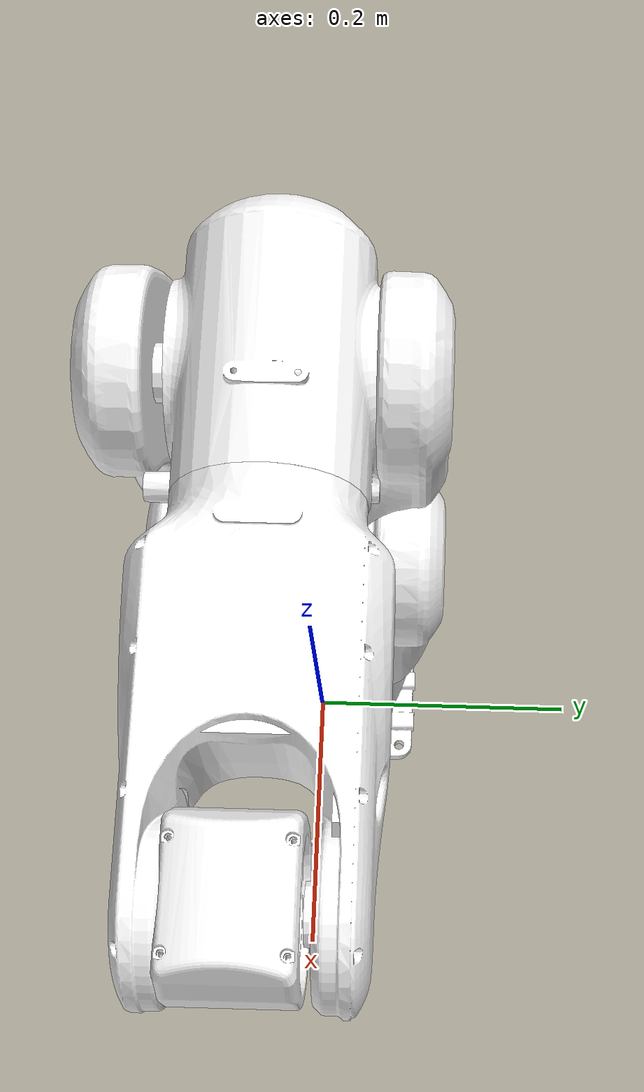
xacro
<?xml version="1.0" encoding="utf-8"?>
<robot name="probot_g602" xmlns:xacro="http://ros.org/wiki/xacro">
  <xacro:property name="M_PI" value="3.1415926536"/>

  <link
    name="base_link">
    <inertial>
      <origin
        xyz="-0.044061 -5.588E-06 0.085803"
        rpy="0 0 0" />
      <mass
        value="3.5695" />
      <inertia
        ixx="0.01281"
        ixy="4.8304E-06"
        ixz="-0.00014028"
        iyy="0.016134"
        iyz="-1.7193E-05"
        izz="0.013611" />
    </inertial>
    <visual>
      <origin
        xyz="0 0 0"
        rpy="0 0 0" />
      <geometry>
        <mesh
          filename="package://probot_description/meshes/PROBOT_G602/base_link.STL" />
      </geometry>
      <material
        name="">
        <color
          rgba="1 1 1 1" />
      </material>
    </visual>
    <collision>
      <origin
        xyz="0 0 0"
        rpy="0 0 0" />
      <geometry>
        <mesh
          filename="package://probot_description/meshes/PROBOT_G602/base_link.STL" />
      </geometry>
    </collision>
  </link>
  <link
    name="link_1">
    <inertial>
      <origin
        xyz="-0.01924 0.00087733 0.11825"
        rpy="0 0 0" />
      <mass
        value="3.3716" />
      <inertia
        ixx="0.022887"
        ixy="-5.6966E-05"
        ixz="-0.0017128"
        iyy="0.016084"
        iyz="-0.0002489"
        izz="0.015166" />
    </inertial>
    <visual>
      <origin
        xyz="0 0 0"
        rpy="0 0 0" />
      <geometry>
        <mesh
          filename="package://probot_description/meshes/PROBOT_G602/link_1.STL" />
      </geometry>
      <material
        name="">
        <color
          rgba="1 1 1 1" />
      </material>
    </visual>
    <collision>
      <origin
        xyz="0 0 0"
        rpy="0 0 0" />
      <geometry>
        <mesh
          filename="package://probot_description/meshes/PROBOT_G602/link_1.STL" />
      </geometry>
    </collision>
  </link>
  <joint
    name="joint_1"
    type="revolute">
    <origin
      xyz="0 0 0.13664"
      rpy="0 0 0" />
    <parent
      link="base_link" />
    <child
      link="link_1" />
    <axis
      xyz="0 0 1" />
    <limit
      lower="-2.617"
      upper="2.617"
      effort="100"
      velocity="3" />
  </joint>
  <link
    name="link_2">
    <inertial>
      <origin
        xyz="-0.022349 -0.00075499 0.13214"
        rpy="0 0 0" />
      <mass
        value="3.525" />
      <inertia
        ixx="0.039137"
        ixy="5.8668E-05"
        ixz="0.00035602"
        iyy="0.031744"
        iyz="-0.00034839"
        izz="0.014206" />
    </inertial>
    <visual>
      <origin
        xyz="0 0 0"
        rpy="0 0 0" />
      <geometry>
        <mesh
          filename="package://probot_description/meshes/PROBOT_G602/link_2.STL" />
      </geometry>
      <material
        name="">
        <color
          rgba="1 1 1 1" />
      </material>
    </visual>
    <collision>
      <origin
        xyz="0 0 0"
        rpy="0 0 0" />
      <geometry>
        <mesh
          filename="package://probot_description/meshes/PROBOT_G602/link_2.STL" />
      </geometry>
    </collision>
  </link>
  <joint
    name="joint_2"
    type="revolute">
    <origin
      xyz="0 0 0.20236"
      rpy="0 0 0" />
    <parent
      link="link_1" />
    <child
      link="link_2" />
    <axis
      xyz="0 -1 0" />
    <limit
      lower="-1.396"
      upper="1.396"
      effort="100"
      velocity="3" />
  </joint>
  <link
    name="link_3">
    <inertial>
      <origin
        xyz="0.028333 -0.035833 0.0083333"
        rpy="0 0 0" />
      <mass
        value="1.3996" />
      <inertia
        ixx="0.0065097"
        ixy="3.4906E-05"
        ixz="1.3672E-06"
        iyy="0.0021416"
        iyz="-4.0642E-06"
        izz="0.006004" />
    </inertial>
    <visual>
      <origin
        xyz="0 0 0"
        rpy="0 0 0" />
      <geometry>
        <mesh
          filename="package://probot_description/meshes/PROBOT_G602/link_3.STL" />
      </geometry>
      <material
        name="">
        <color
          rgba="1 1 1 1" />
      </material>
    </visual>
    <collision>
      <origin
        xyz="0 0 0"
        rpy="0 0 0" />
      <geometry>
        <mesh
          filename="package://probot_description/meshes/PROBOT_G602/link_3.STL" />
      </geometry>
    </collision>
  </link>
  <joint
    name="joint_3"
    type="revolute">
    <origin
      xyz="0 0 0.26033"
      rpy="0 0 0" />
    <parent
      link="link_2" />
    <child
      link="link_3" />
    <axis
      xyz="0 -1 0" />
    <limit
      lower="-0.5232"
      upper="3.6648"
      effort="100"
      velocity="3" />
  </joint>
  <link
    name="link_4">
    <inertial>
      <origin
        xyz="0.0033261 0.093285 0.0012525"
        rpy="0 0 0" />
      <mass
        value="1.3996" />
      <inertia
        ixx="0.0065097"
        ixy="3.4906E-05"
        ixz="1.3672E-06"
        iyy="0.0021416"
        iyz="-4.0642E-06"
        izz="0.006004" />
    </inertial>
    <visual>
      <origin
        xyz="0 0 0.0065"
        rpy="0 0 0" />
      <geometry>
        <mesh
          filename="package://probot_description/meshes/PROBOT_G602/link_4.STL" />
      </geometry>
      <material
        name="">
        <color
          rgba="1 1 1 1" />
      </material>
    </visual>
    <collision>
      <origin
        xyz="0 0 0.0065"
        rpy="0 0 0" />
      <geometry>
        <mesh
          filename="package://probot_description/meshes/PROBOT_G602/link_4.STL" />
      </geometry>
    </collision>
  </link>
  <joint
    name="joint_4"
    type="revolute">
    <origin
      xyz="0.080009 0 0.025"
      rpy="0 ${-M_PI/2} ${-M_PI/2}" />
    <parent
      link="link_3" />
    <child
      link="link_4" />
    <axis
      xyz="0 1 0" />
    <limit
      lower="-2.094"
      upper="2.094"
      effort="100"
      velocity="3" />
  </joint>
  <link
    name="link_5">
    <inertial>
      <origin
        xyz="-0.0071886 0.003645 0.00018485"
        rpy="0 0 0" />
      <mass
        value="0.16059" />
      <inertia
        ixx="0.00018748"
        ixy="-1.6197E-06"
        ixz="6.883E-07"
        iyy="0.00024808"
        iyz="-7.8746E-07"
        izz="0.00018628" />
    </inertial>
    <visual>
      <origin
        xyz="0 0 0"
        rpy="0 0 0" />
      <geometry>
        <mesh
          filename="package://probot_description/meshes/PROBOT_G602/link_5.STL" />
      </geometry>
      <material
        name="">
        <color
          rgba="1 1 1 1" />
      </material>
    </visual>
    <collision>
      <origin
        xyz="0 0 0"
        rpy="0 0 0" />
      <geometry>
        <mesh
          filename="package://probot_description/meshes/PROBOT_G602/link_5.STL" />
      </geometry>
    </collision>
  </link>
  <joint
    name="joint_5"
    type="revolute">
    <origin
      xyz="0 0.19899 0"
      rpy="${M_PI/2} 0 0" />
    <parent
      link="link_4" />
    <child
      link="link_5" />
    <axis
      xyz="0 -1 0" />
    <limit
      lower="-0.5232"
      upper="3.0538"
      effort="100"
      velocity="3" />
  </joint>
  <link
    name="link_6">
    <inertial>
      <origin
        xyz="0.010481 -3.4854E-05 -0.00013365"
        rpy="0 0 0" />
      <mass
        value="0.051849" />
      <inertia
        ixx="2.6866E-05"
        ixy="-5.805E-09"
        ixz="-2.3475E-08"
        iyy="1.5181E-05"
        iyz="8.8354E-08"
        izz="1.5402E-05" />
    </inertial>
    <visual>
      <origin
        xyz="0 0 0"
        rpy="0 0 0" />
      <geometry>
        <mesh
          filename="package://probot_description/meshes/PROBOT_G602/link_6.STL" />
      </geometry>
      <material
        name="">
        <color
          rgba="1 1 1 1" />
      </material>
    </visual>
    <collision>
      <origin
        xyz="0 0 0"
        rpy="0 0 0" />
      <geometry>
        <mesh
          filename="package://probot_description/meshes/PROBOT_G602/link_6.STL" />
      </geometry>
    </collision>
  </link>
  <joint
    name="joint_6"
    type="revolute">
    <origin
      xyz="-0.056045 0.00225 0"
      rpy="0 0 ${M_PI}" />
    <parent
      link="link_5" />
    <child
      link="link_6" />
    <axis
      xyz="1 0 0" />
    <limit
      lower="-6.265"
      upper="6.265"
      effort="100"
      velocity="3" />
  </joint>

  <link name="tool0"/>
  <joint name="joint_tool0" type="fixed">
    <origin xyz="0.02045 0 0" rpy="${M_PI} ${M_PI/2} 0" />
    <parent link="link_6" />
    <child link="tool0" />
  </joint>

  <!-- Transmissions for ROS Control -->
  <xacro:macro name="transmission_block" params="joint_name">
    <transmission name="tran1">
      <type>transmission_interface/SimpleTransmission</type>
      <joint name="${joint_name}">
        <hardwareInterface>hardware_interface/PositionJointInterface</hardwareInterface>
      </joint>
      <actuator name="motor1">
        <hardwareInterface>hardware_interface/PositionJointInterface</hardwareInterface>
        <mechanicalReduction>1</mechanicalReduction>
      </actuator>
    </transmission>
  </xacro:macro>

  <xacro:transmission_block joint_name="joint_1"/>
  <xacro:transmission_block joint_name="joint_2"/>
  <xacro:transmission_block joint_name="joint_3"/>
  <xacro:transmission_block joint_name="joint_4"/>
  <xacro:transmission_block joint_name="joint_5"/>
  <xacro:transmission_block joint_name="joint_6"/>

  <!-- ros_control plugin -->
  <gazebo>
    <plugin name="gazebo_ros_control" filename="libgazebo_ros_control.so">
      <robotNamespace>/</robotNamespace>
      <robotSimType>gazebo_ros_control/DefaultRobotHWSim</robotSimType>
      <legacyModeNS>true</legacyModeNS>
    </plugin>
  </gazebo>
</robot>
